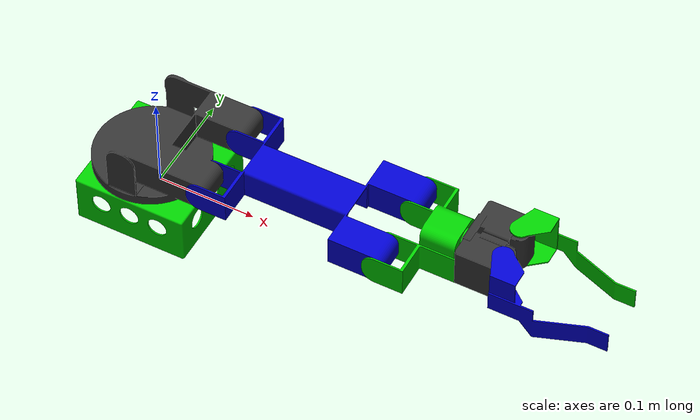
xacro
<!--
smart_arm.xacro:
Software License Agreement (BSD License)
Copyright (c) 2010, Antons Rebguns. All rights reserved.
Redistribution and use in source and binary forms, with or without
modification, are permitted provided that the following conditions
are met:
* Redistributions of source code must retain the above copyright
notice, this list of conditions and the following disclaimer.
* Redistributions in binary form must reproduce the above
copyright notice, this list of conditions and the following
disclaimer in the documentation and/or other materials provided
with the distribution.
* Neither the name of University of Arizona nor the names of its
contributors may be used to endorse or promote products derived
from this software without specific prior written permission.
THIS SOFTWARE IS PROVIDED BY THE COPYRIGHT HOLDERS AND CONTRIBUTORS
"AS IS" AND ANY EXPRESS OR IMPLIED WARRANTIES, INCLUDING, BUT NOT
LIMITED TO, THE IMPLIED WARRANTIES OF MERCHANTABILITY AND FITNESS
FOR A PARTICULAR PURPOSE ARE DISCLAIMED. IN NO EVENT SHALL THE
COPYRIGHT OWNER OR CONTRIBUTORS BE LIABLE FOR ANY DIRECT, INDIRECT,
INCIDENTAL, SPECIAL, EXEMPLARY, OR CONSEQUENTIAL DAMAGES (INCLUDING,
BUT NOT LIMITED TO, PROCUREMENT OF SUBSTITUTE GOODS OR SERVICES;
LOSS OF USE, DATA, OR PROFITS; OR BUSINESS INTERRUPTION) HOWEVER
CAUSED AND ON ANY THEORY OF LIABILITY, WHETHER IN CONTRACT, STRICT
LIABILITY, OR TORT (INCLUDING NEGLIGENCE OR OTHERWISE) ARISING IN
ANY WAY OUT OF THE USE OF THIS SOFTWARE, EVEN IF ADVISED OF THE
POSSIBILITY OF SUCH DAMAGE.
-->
<?xml version="1.0"?>

<robot name="smart_arm"
    xmlns:sensor="http://playerstage.sourceforge.net/gazebo/xmlschema/#sensor"
    xmlns:controller="http://playerstage.sourceforge.net/gazebo/xmlschema/#controller"
    xmlns:interface="http://playerstage.sourceforge.net/gazebo/xmlschema/#interface">

    <!-- Included URDF Files -->
    <include filename="$(find smart_arm_description)/urdf/smart_arm.xacro" />

    <link name="world_link">
        <inertial>
            <mass value="0.0001" />
            <origin xyz="0 0 0" />
            <inertia ixx="0.0001" ixy="0.0" ixz="0.0"
                     iyy="0.0001" iyz="0.0"
                     izz="0.0001" />
        </inertial>

        <visual>
            <origin xyz="0 0 0" rpy="0 0 0" />
            <geometry>
                <box size="0.001 0.001 0.001" />
            </geometry>
        </visual>

        <collision>
            <origin xyz="0 0 0" rpy="0 0 0" />
            <geometry>
              <box size="0.001 0.001 0.001" />
            </geometry>
        </collision>
    </link>

    <smart_arm parent="world_link">
        <origin xyz="0 0 0" rpy="0 0 0" />
    </smart_arm>
</robot>

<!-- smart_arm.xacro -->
<robot
    xmlns:sensor="http://playerstage.sourceforge.net/gazebo/xmlschema/#sensor"
    xmlns:controller="http://playerstage.sourceforge.net/gazebo/xmlschema/#controller"
    xmlns:interface="http://playerstage.sourceforge.net/gazebo/xmlschema/#interface">

    <include filename="$(find smart_arm_description)/urdf/materials.urdf.xacro" />

    <macro name="smart_arm" params="parent *origin">
        <!-- ****** JOINT DEFINITIONS ****** -->

        <!-- Arm's base joint -->
        <joint name="arm_base_joint" type="fixed">
            <insert_block name="origin" />
            <parent link="${parent}"/>
            <child link="arm_base_link"/>
        </joint>

        <!-- Shoulder pan joint -->
        <joint name="shoulder_pan_joint" type="revolute" >
            <origin xyz="-0.0075 0 0.025" rpy="0 0 0" />
            <parent link="arm_base_link" />
            <child link="arm_shoulder_pan_link"/>

            <axis xyz="0 0 1"/>
            <limit  lower="-1.22" upper="1.22" effort="300" velocity="1.17" />
            <safety_controller k_position="100" k_velocity="15.0" soft_lower_limit="${-1.22+0.1}" soft_upper_limit="${1.22-0.1}" />
            <dynamics damping="50" friction="1"/>
        </joint>

        <!-- Shoulder tilt joint -->
        <joint name="shoulder_pitch_joint" type="revolute">
            <origin xyz="${0.105 - 0.01 - 0.03085/2} 0 ${0.01 + 0.05 - 0.031/2}" rpy="0 0 0" />
            <parent link="arm_shoulder_pan_link"/>
            <child link="arm_shoulder_pitch_link" />

            <axis xyz="0 -1 0"/>
            <limit  lower="-1.04719755" upper="1.972222" effort="300" velocity="1.17" />
            <safety_controller k_position="100" k_velocity="15.0" soft_lower_limit="${-1.04719755+0.1}" soft_upper_limit="${1.972222-0.1}" />
            <dynamics damping="50" friction="1"/>
        </joint>

        <!-- Elbow tilt joint -->
        <joint name="elbow_flex_joint" type="revolute">
            <origin xyz="${0.04 - 0.01 + 0.0015 + 0.105 + 0.055 - 0.01} 0 0" rpy="0 0 0" />
            <parent link="arm_shoulder_pitch_link"/>
            <child link="arm_elbow_flex_link" />

            <axis xyz="0 -1 0"/>
            <!-- From -113 to 108 degrees -->
            <limit  lower="-1.972222" upper="1.8849556" effort="300" velocity="1.17" />
            <dynamics damping="50" friction="1"/>
            <safety_controller k_position="100" k_velocity="15.0" soft_lower_limit="${-1.972222+0.1}" soft_upper_limit="${1.8849556-0.1}" />
        </joint>

        <!-- Wrist rotate joint -->
        <joint name="wrist_roll_joint" type="revolute">
            <origin xyz="${0.08 - 0.01} 0 ${0.05 - 0.0115 - 0.0155}" rpy="0 0 0" />
            <parent link="arm_elbow_flex_link"/>
            <child link="arm_wrist_roll_link" />

            <axis xyz="-1 0 0"/>
            <!-- From -150 to 150 degrees -->
            <limit  lower="-2.6179939" upper="2.6179939" effort="300" velocity="1.17" />
            <dynamics damping="50" friction="1"/>
            <safety_controller k_position="100" k_velocity="15.0" soft_lower_limit="${-2.6179939+0.1}" soft_upper_limit="${2.6179939-0.1}" />
        </joint>

        <!-- Gripper right finger joint -->
        <joint name="right_finger_joint" type="revolute">
            <origin xyz="${0.0015 + 0.05 - 0.01} ${-0.035/2} 0" rpy="0 0 0" />
            <parent link="arm_wrist_roll_link"/>
            <child link="arm_right_finger_link" />

            <axis xyz="0 0 1"/>
            <!-- From 14 to -45 degrees -->
            <limit  lower="-0.838576116" upper="0.245436912" effort="300" velocity="1.17" />
            <dynamics damping="50" friction="1"/>
            <safety_controller k_position="100" k_velocity="15.0" soft_lower_limit="${-0.838576116+0.1}" soft_upper_limit="${0.245436912-0.1}" />
        </joint>

        <!-- Gripper left finger joint -->
        <joint name="left_finger_joint" type="revolute">
            <origin xyz="${0.0015 + 0.05 - 0.01} ${0.035/2} 0" rpy="0 0 0" />
            <parent link="arm_wrist_roll_link"/>
            <child link="arm_left_finger_link" />

            <axis xyz="0 0 1"/>
            <!-- From -14 to 45 degrees -->
            <limit  lower="-0.240323643" upper="0.843689385" effort="300" velocity="1.17" />
            <dynamics damping="50" friction="1"/>
            <safety_controller k_position="100" k_velocity="15.0" soft_lower_limit="${-0.240323643+0.1}" soft_upper_limit="${0.843689385-0.1}" />
        </joint>

        <!-- ****** LINK DEFINITIONS ****** -->

        <link name="arm_base_link">
            <inertial>
                <mass value="0.125" />
                <origin xyz="0 0 0.00893364" rpy="0 0 0" />
                <inertia ixx="1.0" ixy="0.0" ixz="0.0"
                         iyy="1.0" iyz="0.0"
                         izz="1.0" />
            </inertial>

            <visual>
                <origin xyz="0.0 0.0 0.0" rpy="0 0 0" />
                <geometry>
                    <mesh filename="package://smart_arm_description/meshes/collada/arm_base.dae"/>
                </geometry>
                <material name="Green" />
            </visual>

            <collision>
                <origin xyz="0.0 0.0 0.0" rpy="0 0 0" />
                <geometry>
                    <mesh filename="package://smart_arm_description/meshes/collada/arm_base.dae"/>
                </geometry>
            </collision>
        </link>

        <link name="arm_shoulder_pan_link">
            <inertial>
                <mass value="0.405" />
                <origin xyz="0.02988871 0 0.02056699" rpy="0 0 0" />
                <inertia ixx="1.0" ixy="0.0" ixz="0.0"
                         iyy="1.0" iyz="0.0"
                         izz="1.0" />
            </inertial>

            <visual>
                <origin xyz="0.0 0.0 0.005" rpy="0 0 0" />
                <geometry>
                    <mesh filename="package://smart_arm_description/meshes/collada/arm_shoulder_pan.dae"/>
                </geometry>
                <material name="Grey" />
            </visual>

            <collision>
                <origin xyz="0.0 0.0 0.0" rpy="0 0 0" />
                <geometry>
                    <mesh filename="package://smart_arm_description/meshes/collada/arm_shoulder_pan.dae"/>
                </geometry>
            </collision>
        </link>

        <link name="arm_shoulder_pitch_link">
            <inertial>
                <mass value="0.18" />
                <origin xyz="0.13999458 0 0.00064711" rpy="0 0 0" />
                <inertia ixx="1.0" ixy="0.0" ixz="0.0"
                         iyy="1.0" iyz="0.0"
                         izz="1.0" />
            </inertial>

            <visual>
                <origin xyz="0.0 0.0 0.0" rpy="0 0 0" />
                <geometry>
                    <mesh filename="package://smart_arm_description/meshes/collada/arm_shoulder_pitch.dae"/>
                </geometry>
                <material name="Blue" />
            </visual>

            <collision>
                <origin xyz="0.0 0.0 0.0" rpy="0 0 0" />
                <geometry>
                    <mesh filename="package://smart_arm_description/meshes/collada/arm_shoulder_pitch.dae"/>
                </geometry>
            </collision>
        </link>

        <link name="arm_elbow_flex_link">
            <inertial>
                <mass value="0.12" />
                <origin xyz="0.04463361 0 0.00720194" rpy="0 0 0" />
                <inertia ixx="1.0" ixy="0.0" ixz="0.0"
                         iyy="1.0" iyz="0.0"
                         izz="1.0" />
            </inertial>

            <visual>
                <origin xyz="0.0 0.0 0.0" rpy="0 0 0" />
                <geometry>
                    <mesh filename="package://smart_arm_description/meshes/collada/arm_elbow_flex.dae"/>
                </geometry>
                <material name="Green" />
            </visual>

            <collision>
                <origin xyz="0.0 0.0 0.0" rpy="0 0 0" />
                <geometry>
                    <mesh filename="package://smart_arm_description/meshes/collada/arm_elbow_flex.dae"/>
                </geometry>
            </collision>
        </link>

        <link name="arm_wrist_roll_link">
            <inertial>
                <mass value="0.13" />
                <origin xyz="0.02539960 0 0" rpy="0 0 0" />
                <inertia ixx="1.0" ixy="0.0" ixz="0.0"
                         iyy="1.0" iyz="0.0"
                         izz="1.0" />
            </inertial>

            <visual>
                <origin xyz="0.0 0.0 0.0" rpy="0 0 0" />
                <geometry>
                    <mesh filename="package://smart_arm_description/meshes/collada/arm_wrist_roll.dae"/>
                </geometry>
                <material name="Grey" />
            </visual>

            <collision>
                <origin xyz="0.0 0.0 0.0" rpy="0 0 0" />
                <geometry>
                    <mesh filename="package://smart_arm_description/meshes/collada/arm_wrist_roll.dae"/>
                </geometry>
            </collision>
        </link>

        <link name="arm_right_finger_link">
            <inertial>
                <mass value="0.0225" />
                <origin xyz="0.03058625 -0.01804371 -0.00941599" rpy="0 0 0" />
                <inertia ixx="1.0" ixy="0.0" ixz="0.0"
                         iyy="1.0" iyz="0.0"
                         izz="1.0" />
            </inertial>

            <visual>
                <origin xyz="0.0 0.0 0.0" rpy="0 0 0" />
                <geometry>
                    <mesh filename="package://smart_arm_description/meshes/collada/arm_right_finger.dae"/>
                </geometry>
                <material name="Blue" />
            </visual>

            <collision>
                <origin xyz="0.0 0.0 0.0" rpy="0 0 0" />
                <geometry>
                    <mesh filename="package://smart_arm_description/meshes/collada/arm_right_finger.dae"/>
                </geometry>
            </collision>
        </link>

        <link name="arm_left_finger_link">
            <inertial>
                <mass value="0.0225" />
                <origin xyz="0.03058625 0.01804371 -0.00941599" rpy="0 0 0" />
                <inertia ixx="1.0" ixy="0.0" ixz="0.0"
                         iyy="1.0" iyz="0.0"
                         izz="1.0" />
            </inertial>

            <visual>
                <origin xyz="0.0 0.0 0.0" rpy="0 0 0" />
                <geometry>
                    <mesh filename="package://smart_arm_description/meshes/collada/arm_left_finger.dae"/>
                </geometry>
                <material name="Green" />
            </visual>

            <collision>
                <origin xyz="0.0 0.0 0.0" rpy="0 0 0" />
                <geometry>
                    <mesh filename="package://smart_arm_description/meshes/collada/arm_left_finger.dae"/>
                </geometry>
            </collision>
        </link>

        <!-- ****** TRANSMISSION DEFINITIONS ****** -->

        <transmission type="pr2_mechanism_model/SimpleTransmission" name="shoulder_pan_trans">
            <actuator name="shoulder_pan_motor" />
            <joint name="shoulder_pan_joint" />
            <mechanicalReduction>1.0</mechanicalReduction>
        </transmission>

        <transmission type="pr2_mechanism_model/SimpleTransmission" name="shoulder_pitch_trans">
            <actuator name="shoulder_pitch_motor" />
            <joint name="shoulder_pitch_joint" />
            <mechanicalReduction>1.0</mechanicalReduction>
        </transmission>

        <transmission type="pr2_mechanism_model/SimpleTransmission" name="elbow_flex_trans">
            <actuator name="elbow_flex_motor" />
            <joint name="elbow_flex_joint" />
            <mechanicalReduction>1.0</mechanicalReduction>
        </transmission>

        <transmission type="pr2_mechanism_model/SimpleTransmission" name="wrist_roll_trans">
            <actuator name="wrist_roll_motor" />
            <joint name="wrist_roll_joint" />
            <mechanicalReduction>1.0</mechanicalReduction>
        </transmission>

        <transmission type="pr2_mechanism_model/SimpleTransmission" name="right_finger_trans">
            <actuator name="right_finger_motor" />
            <joint name="right_finger_joint" />
            <mechanicalReduction>1.0</mechanicalReduction>
        </transmission>

        <transmission type="pr2_mechanism_model/SimpleTransmission" name="left_finger_trans">
            <actuator name="left_finger_motor" />
            <joint name="left_finger_joint" />
            <mechanicalReduction>1.0</mechanicalReduction>
        </transmission>

        <!-- ****** MATERIAL DEFINITIONS ****** -->

        <gazebo reference="arm_base_link">
            <material>SmartArm/GunMetalBrushedAluminum</material>
            <turnGravityOff>true</turnGravityOff>
        </gazebo>

        <gazebo reference="arm_shoulder_pan_link">
            <material>SmartArm/GunMetalBrushedAluminum</material>
            <turnGravityOff>true</turnGravityOff>
        </gazebo>

        <gazebo reference="arm_shoulder_pitch_link">
            <material>SmartArm/GunMetalBrushedAluminum</material>
            <turnGravityOff>true</turnGravityOff>
        </gazebo>

        <gazebo reference="arm_elbow_flex_link">
            <material>SmartArm/GunMetalBrushedAluminum</material>
            <turnGravityOff>true</turnGravityOff>
        </gazebo>

        <gazebo reference="arm_wrist_roll_link">
            <material>SmartArm/GunMetalBrushedAluminum</material>
            <turnGravityOff>true</turnGravityOff>
        </gazebo>

        <gazebo reference="arm_right_finger_link">
            <material>SmartArm/GunMetalBrushedAluminum</material>
            <turnGravityOff>true</turnGravityOff>
            <mu1 value="500.0" />
            <mu2 value="500.0" />
            <kp value="1000000.0" />
            <kd value="1.0" />
        </gazebo>

        <gazebo reference="arm_left_finger_link">
            <material>SmartArm/GunMetalBrushedAluminum</material>
            <turnGravityOff>true</turnGravityOff>
            <mu1 value="500.0" />
            <mu2 value="500.0" />
            <kp value="1000000.0" />
            <kd value="1.0" />
        </gazebo>

        <gazebo reference="shoulder_pan_joint">
            <stopKd value="1.0" />
            <stopKp value="1000000.0" />
            <fudgeFactor value="0.5" />
        </gazebo>

        <gazebo reference="shoulder_pitch_joint">
            <stopKd value="1.0" />
            <stopKp value="1000000.0" />
            <fudgeFactor value="0.5" />
        </gazebo>

        <gazebo reference="elbow_flex_joint">
            <stopKd value="1.0" />
            <stopKp value="1000000.0" />
            <fudgeFactor value="0.5" />
        </gazebo>

        <gazebo reference="wrist_roll_joint">
            <stopKd value="1.0" />
            <stopKp value="1000000.0" />
            <fudgeFactor value="0.5" />
        </gazebo>

        <gazebo reference="right_finger_joint">
            <stopKd value="1.0" />
            <stopKp value="1000000.0" />
            <fudgeFactor value="1.0" />
        </gazebo>

        <gazebo reference="left_finger_joint">
            <stopKd value="1.0" />
            <stopKp value="1000000.0" />
            <fudgeFactor value="1.0" />
        </gazebo>
    </macro>
</robot>

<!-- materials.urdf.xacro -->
<robot>

    <material name="Black">
        <color rgba="0.0 0.0 0.0 1.0"/>
    </material>

    <material name="Blue">
        <color rgba="0.0 0.0 0.8 1.0"/>
    </material>

    <material name="Green">
        <color rgba="0.0 0.8 0.0 1.0"/>
    </material>

    <material name="Grey">
        <color rgba="0.2 0.2 0.2 1.0"/>
    </material>

    <material name="Orange">
        <color rgba="${255/255} ${108/255} ${10/255} 1.0"/>
    </material>

    <material name="Red">
        <color rgba="0.8 0.0 0.0 1.0"/>
    </material>

    <material name="White">
        <color rgba="1.0 1.0 1.0 1.0"/>
    </material>

    <material name="GunMetalBrushedAluminum">
        <texture filename="package://clam_description/media/gun_metal_brushed_aluminum.jpg" />
    </material>

</robot>
